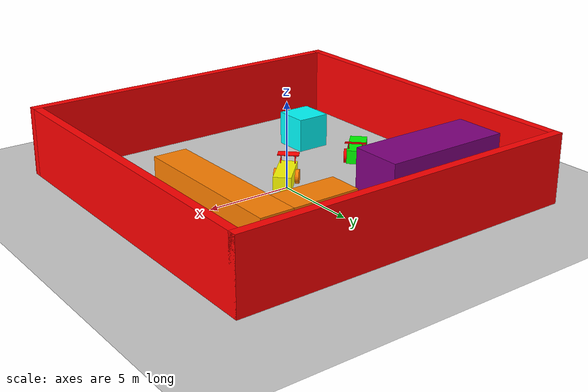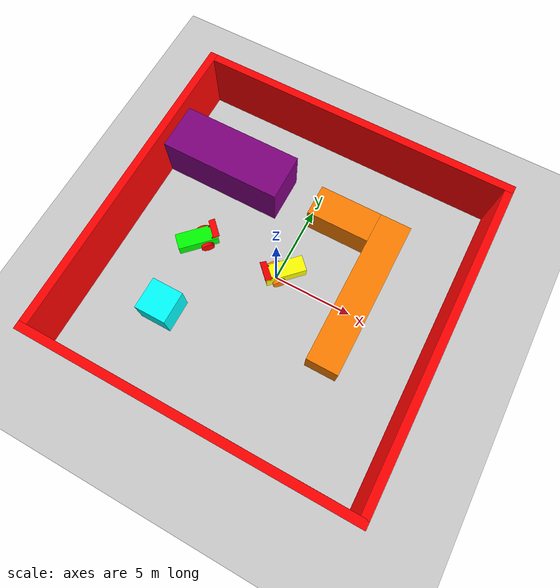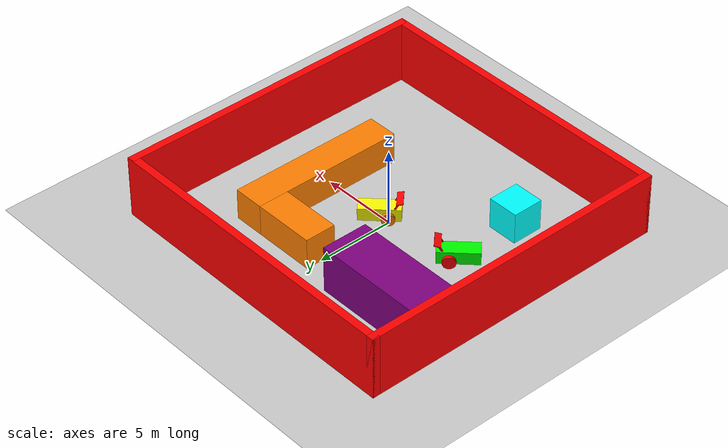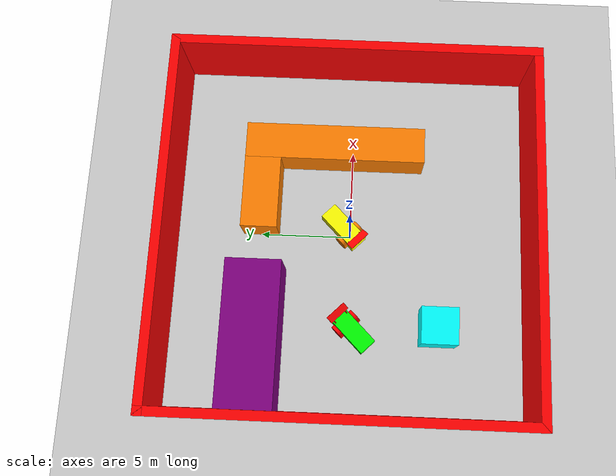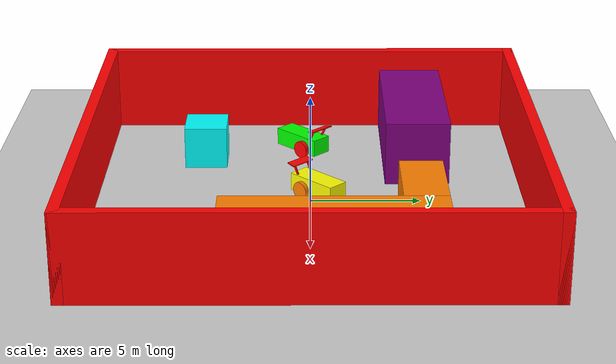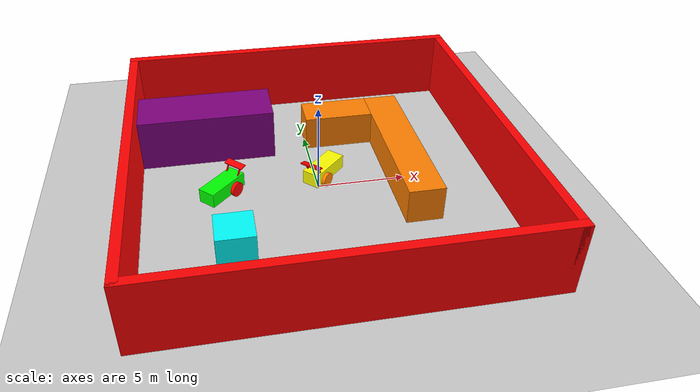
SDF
<sdf version="1.8">
 <world name="sensor_world">
  <physics name="1ms" type="ignored">
   <max_step_size>0.001</max_step_size>
   <real_time_factor>1.0</real_time_factor>
  </physics>
  <plugin filename="gz-sim-physics-system" name="gz::sim::systems::Physics"/>
  <plugin filename="gz-sim-user-commands-system" name="gz::sim::systems::UserCommands"/>
  <plugin filename="gz-sim-scene-broadcaster-system" name="gz::sim::systems::SceneBroadcaster"/>
  <plugin filename="gz-sim-imu-system" name="gz::sim::systems::Imu"/>
  <plugin filename="gz-sim-sensors-system" name="gz::sim::systems::Sensors">
   <render_engine>ogre2</render_engine>
  </plugin>
  <plugin filename="gz-sim-contact-system" name="gz::sim::systems::Contact"/>
  <light type="directional" name="sun">
   <pose>0 0 10 0 0 0</pose>
   <diffuse>0.8 0.8 0.8 1</diffuse>
   <specular>0.2 0.2 0.2 1</specular>
   <attenuation>
    <range>1000</range>
    <constant>0.9</constant>
    <linear>0.01</linear>
    <quadratic>0.001</quadratic>
   </attenuation>
   <direction>-0.5 0.1 -0.9</direction>
  </light>
  <model name="ground_plane">
   <static>true</static>
   <link name="link">
    <collision name="collision"><geometry><plane><normal>0 0 1</normal></plane></geometry></collision>
    <visual name="visual">
     <geometry><plane><normal>0 0 1</normal><size>100 100</size></plane></geometry>
     <material>
      <ambient>0.8 0.8 0.8 1</ambient>
      <diffuse>0.8 0.8 0.8 1</diffuse>
      <specular>0.8 0.8 0.8 1</specular>
     </material>
    </visual>
   </link>
  </model>
  <model name="vehicle_blue" canonical_link="chassis">
   <pose relative_to="world">0 0 0.325 0 0 0.785</pose>
   <frame name="lidar_frame" attached_to="chassis"><pose>0.8 0 0.45 0 0 0</pose></frame>
   <link name="chassis">
    <pose relative_to="__model__">0.5 0 0.6 0 0 0</pose>
    <inertial>
     <mass>2.0</mass>
     <inertia>
      <ixx>0.126164</ixx>
      <ixy>0</ixy>
      <ixz>0</ixz>
      <iyy>0.416519</iyy>
      <iyz>0</iyz>
      <izz>0.481014</izz>
     </inertia>
    </inertial>
    <visual name="visual">
     <geometry><box><size>2.5 1.0 0.8</size></box></geometry>
     <material>
      <ambient>1.0 1.0 0.0 1</ambient>
      <diffuse>1.0 1.0 0.0 1</diffuse>
      <specular>1.0 1.0 0.0 1</specular>
     </material>
    </visual>
    <visual name="spoiler_left">
     <pose>-1.0 0.4 0.6 0 -0.5 0</pose>
     <geometry><box><size>0.1 0.05 0.5</size></box></geometry>
     <material><ambient>1 0 0 1</ambient><diffuse>1 0 0 1</diffuse></material>
    </visual>
    <visual name="spoiler_right">
     <pose>-1.0 -0.4 0.6 0 -0.5 0</pose>
     <geometry><box><size>0.1 0.05 0.5</size></box></geometry>
     <material><ambient>1 0 0 1</ambient><diffuse>1 0 0 1</diffuse></material>
    </visual>
    <visual name="spoiler_wing">
     <pose>-1.15 0 0.85 0 0.2 0</pose>
     <geometry><box><size>0.4 1.2 0.05</size></box></geometry>
     <material><ambient>1 0 0 1</ambient><diffuse>1 0 0 1</diffuse></material>
    </visual>
    <collision name="collision"><geometry><box><size>2.5 1.0 0.8</size></box></geometry></collision>
    <sensor name="imu_sensor" type="imu">
     <always_on>1</always_on>
     <update_rate>1</update_rate>
     <visualize>true</visualize>
     <topic>imu</topic>
    </sensor>
    <sensor name="gpu_lidar" type="gpu_lidar">
     <pose relative_to="lidar_frame">0 0 0 0 0 0</pose>
     <topic>lidar</topic>
     <update_rate>10</update_rate>
     <ray>
      <scan>
       <horizontal>
        <samples>640</samples>
        <resolution>1</resolution>
        <min_angle>-1.396263</min_angle>
        <max_angle>1.396263</max_angle>
       </horizontal>
       <vertical>
        <samples>1</samples>
        <resolution>0.01</resolution>
        <min_angle>0</min_angle>
        <max_angle>0</max_angle>
       </vertical>
      </scan>
      <range><min>0.08</min><max>10.0</max><resolution>0.01</resolution></range>
     </ray>
     <always_on>1</always_on>
     <visualize>true</visualize>
    </sensor>
   </link>
   <link name="left_wheel">
    <pose relative_to="chassis">-0.5 0.6 -0.2 -1.5707 0 0</pose>
    <inertial>
     <mass>2</mass>
     <inertia><ixx>0.145833</ixx><ixy>0</ixy><ixz>0</ixz><iyy>0.145833</iyy><iyz>0</iyz><izz>0.125</izz></inertia>
    </inertial>
    <visual name="visual">
     <geometry><cylinder><radius>0.4</radius><length>0.2</length></cylinder></geometry>
     <material><ambient>1.0 0.5 0.0 1</ambient><diffuse>1.0 0.5 0.0 1</diffuse></material>
    </visual>
    <collision name="collision">
     <geometry><cylinder><radius>0.4</radius><length>0.2</length></cylinder></geometry>
    </collision>
   </link>
   <link name="right_wheel">
    <pose relative_to="chassis">-0.5 -0.6 -0.2 -1.5707 0 0</pose>
    <inertial>
     <mass>1</mass>
     <inertia><ixx>0.145833</ixx><ixy>0</ixy><ixz>0</ixz><iyy>0.145833</iyy><iyz>0</iyz><izz>0.125</izz></inertia>
    </inertial>
    <visual name="visual">
     <geometry><cylinder><radius>0.4</radius><length>0.2</length></cylinder></geometry>
     <material><ambient>1.0 0.5 0.0 1</ambient><diffuse>1.0 0.5 0.0 1</diffuse></material>
    </visual>
    <collision name="collision">
     <geometry><cylinder><radius>0.4</radius><length>0.2</length></cylinder></geometry>
    </collision>
   </link>
   <frame name="caster_frame" attached_to="chassis"><pose>0.8 0 -0.4 0 0 0</pose></frame>
   <link name="caster">
    <pose relative_to="caster_frame"/>
    <inertial>
     <mass>1</mass>
     <inertia><ixx>0.1</ixx><ixy>0</ixy><ixz>0</ixz><iyy>0.1</iyy><iyz>0</iyz><izz>0.1</izz></inertia>
    </inertial>
    <visual name="visual">
     <geometry><sphere><radius>0.2</radius></sphere></geometry>
     <material><ambient>1.0 0.5 0.0 1</ambient><diffuse>1.0 0.5 0.0 1</diffuse></material>
    </visual>
    <collision name="collision"><geometry><sphere><radius>0.2</radius></sphere></geometry></collision>
   </link>
   <joint name="left_wheel_joint" type="revolute">
    <pose relative_to="left_wheel"/>
    <parent>chassis</parent>
    <child>left_wheel</child>
    <axis><xyz expressed_in="__model__">0 1 0</xyz><limit><lower>-1e16</lower><upper>1e16</upper></limit></axis>
   </joint>
   <joint name="right_wheel_joint" type="revolute">
    <pose relative_to="right_wheel"/>
    <parent>chassis</parent>
    <child>right_wheel</child>
    <axis><xyz expressed_in="__model__">0 1 0</xyz><limit><lower>-1e16</lower><upper>1e16</upper></limit></axis>
   </joint>
   <joint name="caster_wheel" type="ball"><parent>chassis</parent><child>caster</child></joint>
   <plugin filename="gz-sim-diff-drive-system" name="gz::sim::systems::DiffDrive">
    <left_joint>left_wheel_joint</left_joint>
    <right_joint>right_wheel_joint</right_joint>
    <wheel_separation>1.2</wheel_separation>
    <wheel_radius>0.4</wheel_radius>
    <odom_publish_frequency>1</odom_publish_frequency>
    <topic>cmd_vel</topic>
   </plugin>
  </model>
  <model name="vehicle_green" canonical_link="chassis">
   <pose relative_to="world">-5 0 0.325 0 0 -2.356</pose>
   <frame name="lidar_frame" attached_to="chassis"><pose>0.8 0 0.45 0 0 0</pose></frame>
   <link name="chassis">
    <pose relative_to="__model__">0.5 0 0.6 0 0 0</pose>
    <inertial>
     <mass>2.0</mass>
     <inertia>
      <ixx>0.126164</ixx>
      <ixy>0</ixy>
      <ixz>0</ixz>
      <iyy>0.416519</iyy>
      <iyz>0</iyz>
      <izz>0.481014</izz>
     </inertia>
    </inertial>
    <visual name="visual">
     <geometry><box><size>2.5 1.0 0.8</size></box></geometry>
     <material>
      <ambient>0.0 1.0 0.0 1</ambient>
      <diffuse>0.0 1.0 0.0 1</diffuse>
      <specular>0.0 1.0 0.0 1</specular>
     </material>
    </visual>
    <visual name="spoiler_left">
     <pose>-1.0 0.4 0.6 0 -0.5 0</pose>
     <geometry><box><size>0.1 0.05 0.5</size></box></geometry>
     <material><ambient>1 0 0 1</ambient><diffuse>1 0 0 1</diffuse></material>
    </visual>
    <visual name="spoiler_right">
     <pose>-1.0 -0.4 0.6 0 -0.5 0</pose>
     <geometry><box><size>0.1 0.05 0.5</size></box></geometry>
     <material><ambient>1 0 0 1</ambient><diffuse>1 0 0 1</diffuse></material>
    </visual>
    <visual name="spoiler_wing">
     <pose>-1.15 0 0.85 0 0.2 0</pose>
     <geometry><box><size>0.4 1.2 0.05</size></box></geometry>
     <material><ambient>1 0 0 1</ambient><diffuse>1 0 0 1</diffuse></material>
    </visual>
    <collision name="collision"><geometry><box><size>2.5 1.0 0.8</size></box></geometry></collision>
    <sensor name="imu_sensor" type="imu">
     <always_on>1</always_on>
     <update_rate>1</update_rate>
     <visualize>true</visualize>
     <topic>imu</topic>
    </sensor>
    <sensor name="gpu_lidar" type="gpu_lidar">
     <pose relative_to="lidar_frame">0 0 0 0 0 0</pose>
     <topic>/lidar_green</topic>
     <update_rate>10</update_rate>
     <ray>
      <scan>
       <horizontal>
        <samples>640</samples>
        <resolution>1</resolution>
        <min_angle>-1.396263</min_angle>
        <max_angle>1.396263</max_angle>
       </horizontal>
       <vertical>
        <samples>1</samples>
        <resolution>0.01</resolution>
        <min_angle>0</min_angle>
        <max_angle>0</max_angle>
       </vertical>
      </scan>
      <range><min>0.08</min><max>10.0</max><resolution>0.01</resolution></range>
     </ray>
     <always_on>1</always_on>
     <visualize>true</visualize>
    </sensor>
   </link>
   <link name="left_wheel">
    <pose relative_to="chassis">-0.5 0.6 -0.2 -1.5707 0 0</pose>
    <inertial>
     <mass>2</mass>
     <inertia><ixx>0.145833</ixx><ixy>0</ixy><ixz>0</ixz><iyy>0.145833</iyy><iyz>0</iyz><izz>0.125</izz></inertia>
    </inertial>
    <visual name="visual">
     <geometry><cylinder><radius>0.4</radius><length>0.2</length></cylinder></geometry>
     <material><ambient>1 0 0 1</ambient><diffuse>1 0 0 1</diffuse></material>
    </visual>
    <collision name="collision">
     <geometry><cylinder><radius>0.4</radius><length>0.2</length></cylinder></geometry>
    </collision>
   </link>
   <link name="right_wheel">
    <pose relative_to="chassis">-0.5 -0.6 -0.2 -1.5707 0 0</pose>
    <inertial>
     <mass>1</mass>
     <inertia><ixx>0.145833</ixx><ixy>0</ixy><ixz>0</ixz><iyy>0.145833</iyy><iyz>0</iyz><izz>0.125</izz></inertia>
    </inertial>
    <visual name="visual">
     <geometry><cylinder><radius>0.4</radius><length>0.2</length></cylinder></geometry>
     <material><ambient>1 0 0 1</ambient><diffuse>1 0 0 1</diffuse></material>
    </visual>
    <collision name="collision">
     <geometry><cylinder><radius>0.4</radius><length>0.2</length></cylinder></geometry>
    </collision>
   </link>
   <frame name="caster_frame" attached_to="chassis"><pose>0.8 0 -0.4 0 0 0</pose></frame>
   <link name="caster">
    <pose relative_to="caster_frame"/>
    <inertial>
     <mass>1</mass>
     <inertia><ixx>0.1</ixx><ixy>0</ixy><ixz>0</ixz><iyy>0.1</iyy><iyz>0</iyz><izz>0.1</izz></inertia>
    </inertial>
    <visual name="visual">
     <geometry><sphere><radius>0.2</radius></sphere></geometry>
     <material><ambient>0 1 0 1</ambient><diffuse>0 1 0 1</diffuse></material>
    </visual>
    <collision name="collision"><geometry><sphere><radius>0.2</radius></sphere></geometry></collision>
   </link>
   <joint name="left_wheel_joint" type="revolute">
    <pose relative_to="left_wheel"/>
    <parent>chassis</parent>
    <child>left_wheel</child>
    <axis><xyz expressed_in="__model__">0 1 0</xyz><limit><lower>-1e16</lower><upper>1e16</upper></limit></axis>
   </joint>
   <joint name="right_wheel_joint" type="revolute">
    <pose relative_to="right_wheel"/>
    <parent>chassis</parent>
    <child>right_wheel</child>
    <axis><xyz expressed_in="__model__">0 1 0</xyz><limit><lower>-1e16</lower><upper>1e16</upper></limit></axis>
   </joint>
   <joint name="caster_wheel" type="ball"><parent>chassis</parent><child>caster</child></joint>
   <plugin filename="gz-sim-diff-drive-system" name="gz::sim::systems::DiffDrive">
    <left_joint>left_wheel_joint</left_joint>
    <right_joint>right_wheel_joint</right_joint>
    <wheel_separation>1.2</wheel_separation>
    <wheel_radius>0.4</wheel_radius>
    <odom_publish_frequency>1</odom_publish_frequency>
    <topic>/cmd_vel_green</topic>
   </plugin>
  </model>
  <model name="arena_walls">
   <static>true</static>
   <link name="walls_link">
    <collision name="collision_n">
     <pose>0 10 2.0 0 0 0</pose>
     <geometry><box><size>20.5 0.5 4.0</size></box></geometry>
    </collision>
    <visual name="visual_n">
     <pose>0 10 2.0 0 0 0</pose>
     <geometry><box><size>20.5 0.5 4.0</size></box></geometry>
     <material>
      <ambient>1.0 0.0 0.0 1</ambient>
      <diffuse>1.0 0.0 0.0 1</diffuse>
      <specular>1.0 0.0 0.0 1</specular>
     </material>
    </visual>
    <collision name="collision_s">
     <pose>0 -10 2.0 0 0 0</pose>
     <geometry><box><size>20.5 0.5 4.0</size></box></geometry>
    </collision>
    <visual name="visual_s">
     <pose>0 -10 2.0 0 0 0</pose>
     <geometry><box><size>20.5 0.5 4.0</size></box></geometry>
     <material>
      <ambient>1.0 0.0 0.0 1</ambient>
      <diffuse>1.0 0.0 0.0 1</diffuse>
      <specular>1.0 0.0 0.0 1</specular>
     </material>
    </visual>
    <collision name="collision_e">
     <pose>10 0 2.0 0 0 0</pose>
     <geometry><box><size>0.5 20.5 4.0</size></box></geometry>
    </collision>
    <visual name="visual_e">
     <pose>10 0 2.0 0 0 0</pose>
     <geometry><box><size>0.5 20.5 4.0</size></box></geometry>
     <material>
      <ambient>1.0 0.0 0.0 1</ambient>
      <diffuse>1.0 0.0 0.0 1</diffuse>
      <specular>1.0 0.0 0.0 1</specular>
     </material>
    </visual>
    <collision name="collision_w">
     <pose>-10 0 2.0 0 0 0</pose>
     <geometry><box><size>0.5 20.5 4.0</size></box></geometry>
    </collision>
    <visual name="visual_w">
     <pose>-10 0 2.0 0 0 0</pose>
     <geometry><box><size>0.5 20.5 4.0</size></box></geometry>
     <material>
      <ambient>1.0 0.0 0.0 1</ambient>
      <diffuse>1.0 0.0 0.0 1</diffuse>
      <specular>1.0 0.0 0.0 1</specular>
     </material>
    </visual>
    <sensor name="sensor_contact" type="contact">
     <contact>
      <collision>collision_n</collision>
      <collision>collision_s</collision>
      <collision>collision_e</collision>
      <collision>collision_w</collision>
     </contact>
    </sensor>
   </link>
   <plugin filename="gz-sim-touchplugin-system" name="gz::sim::systems::TouchPlugin">
    <target>vehicle_blue</target>
    <namespace>wall</namespace>
    <time>0.001</time>
    <enabled>true</enabled>
   </plugin>
  </model>
  <model name="massive_obstacles">
   <static>true</static>
   <link name="link">
    <collision name="cube_1_vertical_col">
     <pose>5 1.0 1.0 0 0 0</pose>
     <geometry><box><size>2 10 2</size></box></geometry>
    </collision>
    <visual name="cube_1_vertical_vis">
     <pose>5 1.0 1.0 0 0 0</pose>
     <geometry><box><size>2 10 2</size></box></geometry>
     <material><ambient>1 0.5 0 1</ambient><diffuse>1 0.5 0 1</diffuse></material>
    </visual>
    <collision name="cube_1_horizontal_col">
     <pose>2 5 1.0 0 0 0</pose>
     <geometry><box><size>4 2 2</size></box></geometry>
    </collision>
    <visual name="cube_1_horizontal_vis">
     <pose>2 5 1.0 0 0 0</pose>
     <geometry><box><size>4 2 2</size></box></geometry>
     <material><ambient>1 0.5 0 1</ambient><diffuse>1 0.5 0 1</diffuse></material>
    </visual>
    <collision name="cube_2_col">
     <pose>-5 -5 1.0 0 0 0</pose>
     <geometry><box><size>2 2 2</size></box></geometry>
    </collision>
    <visual name="cube_2_vis">
     <pose>-5 -5 1.0 0 0 0</pose>
     <geometry><box><size>2 2 2</size></box></geometry>
     <material><ambient>0 1 1 1</ambient><diffuse>0 1 1 1</diffuse></material>
    </visual>
    <collision name="cube_4_col">
     <pose>-6 5 1.5 0 0 0</pose>
     <geometry><box><size>8 3 3</size></box></geometry>
    </collision>
    <visual name="cube_4_vis">
     <pose>-6 5 1.5 0 0 0</pose>
     <geometry><box><size>8 3 3</size></box></geometry>
     <material><ambient>0.5 0 0.5 1</ambient><diffuse>0.5 0 0.5 1</diffuse></material>
    </visual>
   </link>
  </model>
  <plugin filename="gz-sim-triggered-publisher-system" name="gz::sim::systems::TriggeredPublisher">
   <input type="gz.msgs.Int32" topic="/keyboard/keypress"><match field="data">16777234</match></input>
   <output type="gz.msgs.Twist" topic="/cmd_vel">linear: {x: 0.0}, angular: {z: 0.5}</output>
  </plugin>
  <plugin filename="gz-sim-triggered-publisher-system" name="gz::sim::systems::TriggeredPublisher">
   <input type="gz.msgs.Int32" topic="/keyboard/keypress"><match field="data">16777235</match></input>
   <output type="gz.msgs.Twist" topic="/cmd_vel">linear: {x: 0.5}, angular: {z: 0.0}</output>
  </plugin>
  <plugin filename="gz-sim-triggered-publisher-system" name="gz::sim::systems::TriggeredPublisher">
   <input type="gz.msgs.Int32" topic="/keyboard/keypress"><match field="data">16777236</match></input>
   <output type="gz.msgs.Twist" topic="/cmd_vel">linear: {x: 0.0}, angular: {z: -0.5}</output>
  </plugin>
  <plugin filename="gz-sim-triggered-publisher-system" name="gz::sim::systems::TriggeredPublisher">
   <input type="gz.msgs.Int32" topic="/keyboard/keypress"><match field="data">16777237</match></input>
   <output type="gz.msgs.Twist" topic="/cmd_vel">linear: {x: -0.5}, angular: {z: 0.0}</output>
  </plugin>
  <plugin filename="gz-sim-triggered-publisher-system" name="gz::sim::systems::TriggeredPublisher">
   <input type="gz.msgs.Boolean" topic="/wall/touched"><match>data: true</match></input>
   <output type="gz.msgs.Twist" topic="/cmd_vel">linear: {x: 0.0}, angular: {z: 0.0}</output>
  </plugin>
 </world>
</sdf>
